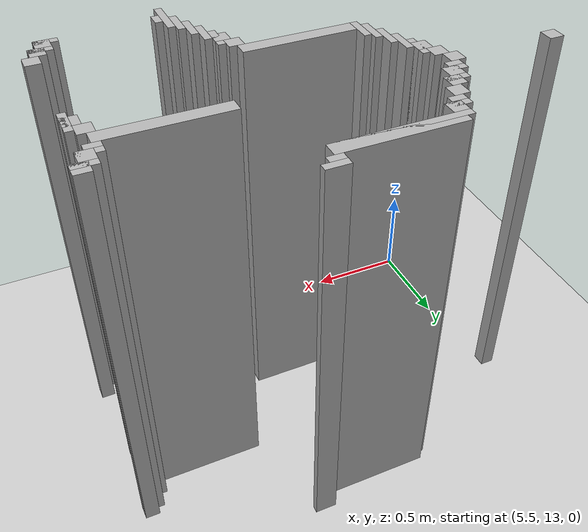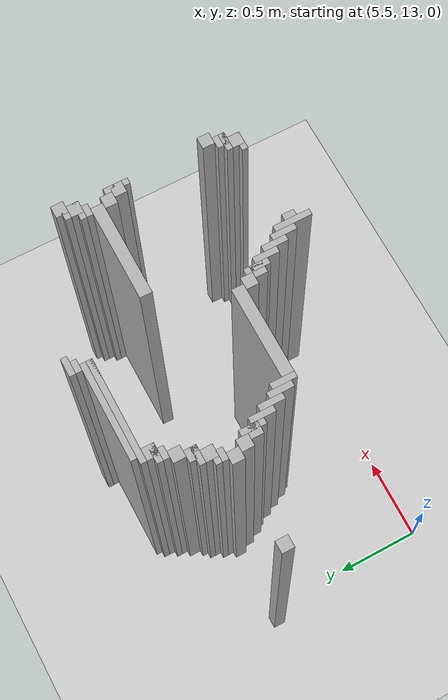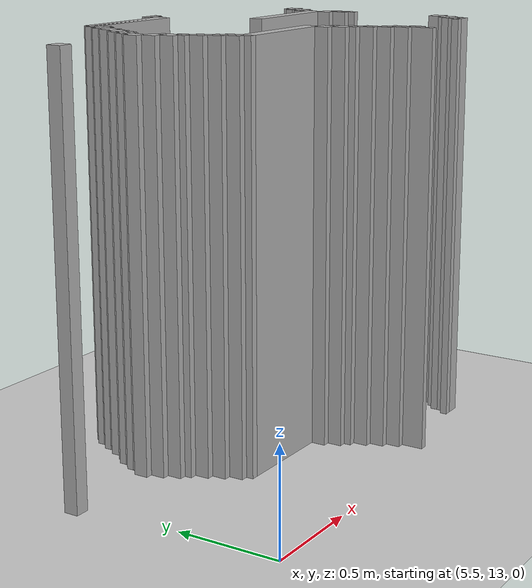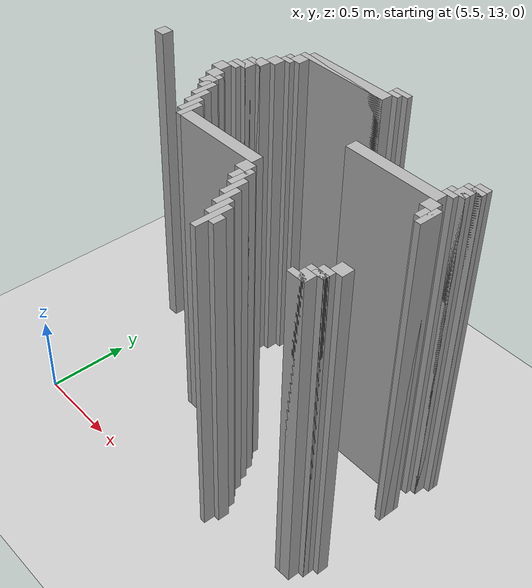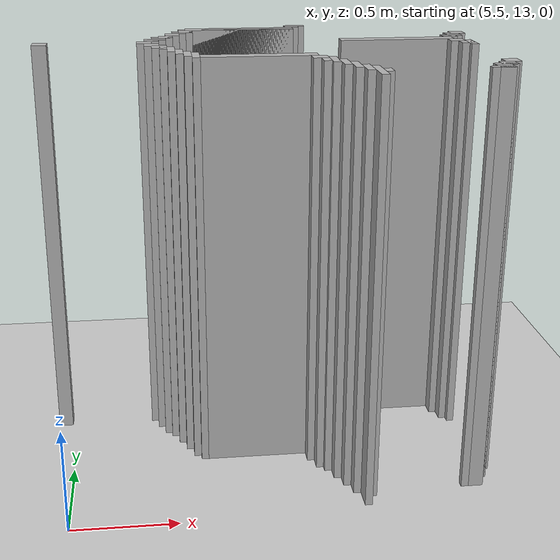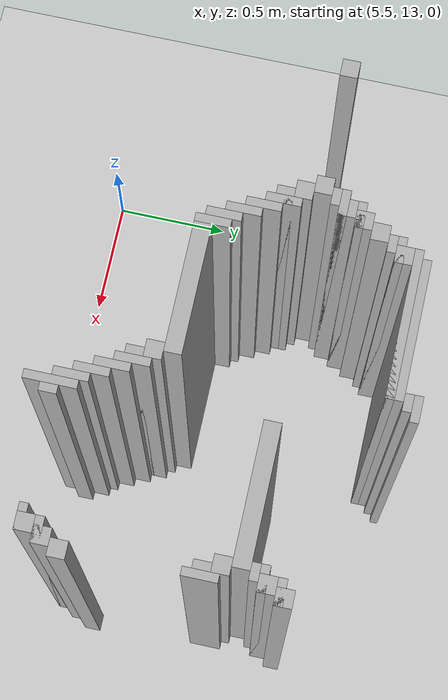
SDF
<sdf version="1.6">
 <world name="slam_world">
  <model name="ground_plane">
   <static>true</static>
   <link name="link">
    <collision name="collision">
     <geometry><plane><normal>0 0 1</normal><size>100 100</size></plane></geometry>
    </collision>
    <visual name="visual">
     <geometry><plane><normal>0 0 1</normal><size>100 100</size></plane></geometry>
     <material>
      <ambient>0.8 0.8 0.8 1</ambient>
      <diffuse>0.8 0.8 0.8 1</diffuse>
      <specular>0.8 0.8 0.8 1</specular>
     </material>
    </visual>
   </link>
  </model>
  <model name="wall_986">
   <static>true</static>
   <pose>6.69953596287703 14.4953596287703 1.0 0 0 0</pose>
   <link name="link">
    <collision name="collision">
     <geometry><box><size>0.10440835266821345 0.03480278422273782 2.0</size></box></geometry>
    </collision>
    <visual name="visual">
     <geometry><box><size>0.10440835266821345 0.03480278422273782 2.0</size></box></geometry>
     <material><ambient>0.5 0.5 0.5 1</ambient><diffuse>0.7 0.7 0.7 1</diffuse></material>
    </visual>
   </link>
  </model>
  <model name="wall_999">
   <static>true</static>
   <pose>6.682134570765661 14.460556844547563 1.0 0 0 0</pose>
   <link name="link">
    <collision name="collision">
     <geometry><box><size>0.06960556844547564 0.03480278422273782 2.0</size></box></geometry>
    </collision>
    <visual name="visual">
     <geometry><box><size>0.06960556844547564 0.03480278422273782 2.0</size></box></geometry>
     <material><ambient>0.5 0.5 0.5 1</ambient><diffuse>0.7 0.7 0.7 1</diffuse></material>
    </visual>
   </link>
  </model>
  <model name="wall_1008">
   <static>true</static>
   <pose>6.403712296983758 14.408352668213457 1.0 0 0 0</pose>
   <link name="link">
    <collision name="collision">
     <geometry><box><size>0.5568445475638051 0.06960556844547564 2.0</size></box></geometry>
    </collision>
    <visual name="visual">
     <geometry><box><size>0.5568445475638051 0.06960556844547564 2.0</size></box></geometry>
     <material><ambient>0.5 0.5 0.5 1</ambient><diffuse>0.7 0.7 0.7 1</diffuse></material>
    </visual>
   </link>
  </model>
  <model name="wall_1023">
   <static>true</static>
   <pose>6.386310904872389 14.390951276102088 1.0 0 0 0</pose>
   <link name="link">
    <collision name="collision">
     <geometry><box><size>0.5916473317865429 0.03480278422273782 2.0</size></box></geometry>
    </collision>
    <visual name="visual">
     <geometry><box><size>0.5916473317865429 0.03480278422273782 2.0</size></box></geometry>
     <material><ambient>0.5 0.5 0.5 1</ambient><diffuse>0.7 0.7 0.7 1</diffuse></material>
    </visual>
   </link>
  </model>
  <model name="wall_1035">
   <static>true</static>
   <pose>6.125290023201856 14.33874709976798 1.0 0 0 0</pose>
   <link name="link">
    <collision name="collision">
     <geometry><box><size>0.06960556844547564 0.06960556844547564 2.0</size></box></geometry>
    </collision>
    <visual name="visual">
     <geometry><box><size>0.06960556844547564 0.06960556844547564 2.0</size></box></geometry>
     <material><ambient>0.5 0.5 0.5 1</ambient><diffuse>0.7 0.7 0.7 1</diffuse></material>
    </visual>
   </link>
  </model>
  <model name="wall_1047">
   <static>true</static>
   <pose>6.107888631090487 14.321345707656612 1.0 0 0 0</pose>
   <link name="link">
    <collision name="collision">
     <geometry><box><size>0.10440835266821345 0.03480278422273782 2.0</size></box></geometry>
    </collision>
    <visual name="visual">
     <geometry><box><size>0.10440835266821345 0.03480278422273782 2.0</size></box></geometry>
     <material><ambient>0.5 0.5 0.5 1</ambient><diffuse>0.7 0.7 0.7 1</diffuse></material>
    </visual>
   </link>
  </model>
  <model name="wall_1058">
   <static>true</static>
   <pose>6.090487238979118 14.286542923433874 1.0 0 0 0</pose>
   <link name="link">
    <collision name="collision">
     <geometry><box><size>0.06960556844547564 0.03480278422273782 2.0</size></box></geometry>
    </collision>
    <visual name="visual">
     <geometry><box><size>0.06960556844547564 0.03480278422273782 2.0</size></box></geometry>
     <material><ambient>0.5 0.5 0.5 1</ambient><diffuse>0.7 0.7 0.7 1</diffuse></material>
    </visual>
   </link>
  </model>
  <model name="wall_1066">
   <static>true</static>
   <pose>6.05568445475638 14.234338747099768 1.0 0 0 0</pose>
   <link name="link">
    <collision name="collision">
     <geometry><box><size>0.06960556844547564 0.06960556844547564 2.0</size></box></geometry>
    </collision>
    <visual name="visual">
     <geometry><box><size>0.06960556844547564 0.06960556844547564 2.0</size></box></geometry>
     <material><ambient>0.5 0.5 0.5 1</ambient><diffuse>0.7 0.7 0.7 1</diffuse></material>
    </visual>
   </link>
  </model>
  <model name="wall_1078">
   <static>true</static>
   <pose>6.020881670533642 14.164733178654291 1.0 0 0 0</pose>
   <link name="link">
    <collision name="collision">
     <geometry><box><size>0.06960556844547564 0.06960556844547564 2.0</size></box></geometry>
    </collision>
    <visual name="visual">
     <geometry><box><size>0.06960556844547564 0.06960556844547564 2.0</size></box></geometry>
     <material><ambient>0.5 0.5 0.5 1</ambient><diffuse>0.7 0.7 0.7 1</diffuse></material>
    </visual>
   </link>
  </model>
  <model name="wall_1079">
   <static>true</static>
   <pose>7.48259860788863 14.164733178654291 1.0 0 0 0</pose>
   <link name="link">
    <collision name="collision">
     <geometry><box><size>0.06960556844547564 0.06960556844547564 2.0</size></box></geometry>
    </collision>
    <visual name="visual">
     <geometry><box><size>0.06960556844547564 0.06960556844547564 2.0</size></box></geometry>
     <material><ambient>0.5 0.5 0.5 1</ambient><diffuse>0.7 0.7 0.7 1</diffuse></material>
    </visual>
   </link>
  </model>
  <model name="wall_1090">
   <static>true</static>
   <pose>6.003480278422273 14.147331786542923 1.0 0 0 0</pose>
   <link name="link">
    <collision name="collision">
     <geometry><box><size>0.10440835266821345 0.03480278422273782 2.0</size></box></geometry>
    </collision>
    <visual name="visual">
     <geometry><box><size>0.10440835266821345 0.03480278422273782 2.0</size></box></geometry>
     <material><ambient>0.5 0.5 0.5 1</ambient><diffuse>0.7 0.7 0.7 1</diffuse></material>
    </visual>
   </link>
  </model>
  <model name="wall_1091">
   <static>true</static>
   <pose>7.465197215777262 14.147331786542923 1.0 0 0 0</pose>
   <link name="link">
    <collision name="collision">
     <geometry><box><size>0.10440835266821345 0.03480278422273782 2.0</size></box></geometry>
    </collision>
    <visual name="visual">
     <geometry><box><size>0.10440835266821345 0.03480278422273782 2.0</size></box></geometry>
     <material><ambient>0.5 0.5 0.5 1</ambient><diffuse>0.7 0.7 0.7 1</diffuse></material>
    </visual>
   </link>
  </model>
  <model name="wall_1101">
   <static>true</static>
   <pose>5.986078886310905 14.095127610208817 1.0 0 0 0</pose>
   <link name="link">
    <collision name="collision">
     <geometry><box><size>0.06960556844547564 0.06960556844547564 2.0</size></box></geometry>
    </collision>
    <visual name="visual">
     <geometry><box><size>0.06960556844547564 0.06960556844547564 2.0</size></box></geometry>
     <material><ambient>0.5 0.5 0.5 1</ambient><diffuse>0.7 0.7 0.7 1</diffuse></material>
    </visual>
   </link>
  </model>
  <model name="wall_1102">
   <static>true</static>
   <pose>7.447795823665893 14.095127610208817 1.0 0 0 0</pose>
   <link name="link">
    <collision name="collision">
     <geometry><box><size>0.06960556844547564 0.06960556844547564 2.0</size></box></geometry>
    </collision>
    <visual name="visual">
     <geometry><box><size>0.06960556844547564 0.06960556844547564 2.0</size></box></geometry>
     <material><ambient>0.5 0.5 0.5 1</ambient><diffuse>0.7 0.7 0.7 1</diffuse></material>
    </visual>
   </link>
  </model>
  <model name="wall_1109">
   <static>true</static>
   <pose>5.968677494199536 14.077726218097448 1.0 0 0 0</pose>
   <link name="link">
    <collision name="collision">
     <geometry><box><size>0.10440835266821345 0.03480278422273782 2.0</size></box></geometry>
    </collision>
    <visual name="visual">
     <geometry><box><size>0.10440835266821345 0.03480278422273782 2.0</size></box></geometry>
     <material><ambient>0.5 0.5 0.5 1</ambient><diffuse>0.7 0.7 0.7 1</diffuse></material>
    </visual>
   </link>
  </model>
  <model name="wall_1110">
   <static>true</static>
   <pose>7.430394431554524 14.077726218097448 1.0 0 0 0</pose>
   <link name="link">
    <collision name="collision">
     <geometry><box><size>0.10440835266821345 0.03480278422273782 2.0</size></box></geometry>
    </collision>
    <visual name="visual">
     <geometry><box><size>0.10440835266821345 0.03480278422273782 2.0</size></box></geometry>
     <material><ambient>0.5 0.5 0.5 1</ambient><diffuse>0.7 0.7 0.7 1</diffuse></material>
    </visual>
   </link>
  </model>
  <model name="wall_1120">
   <static>true</static>
   <pose>5.951276102088166 14.042923433874709 1.0 0 0 0</pose>
   <link name="link">
    <collision name="collision">
     <geometry><box><size>0.06960556844547564 0.03480278422273782 2.0</size></box></geometry>
    </collision>
    <visual name="visual">
     <geometry><box><size>0.06960556844547564 0.03480278422273782 2.0</size></box></geometry>
     <material><ambient>0.5 0.5 0.5 1</ambient><diffuse>0.7 0.7 0.7 1</diffuse></material>
    </visual>
   </link>
  </model>
  <model name="wall_1121">
   <static>true</static>
   <pose>7.412993039443156 14.042923433874709 1.0 0 0 0</pose>
   <link name="link">
    <collision name="collision">
     <geometry><box><size>0.06960556844547564 0.03480278422273782 2.0</size></box></geometry>
    </collision>
    <visual name="visual">
     <geometry><box><size>0.06960556844547564 0.03480278422273782 2.0</size></box></geometry>
     <material><ambient>0.5 0.5 0.5 1</ambient><diffuse>0.7 0.7 0.7 1</diffuse></material>
    </visual>
   </link>
  </model>
  <model name="wall_1129">
   <static>true</static>
   <pose>5.4292343387471 13.990719257540603 1.0 0 0 0</pose>
   <link name="link">
    <collision name="collision">
     <geometry><box><size>0.06960556844547564 0.06960556844547564 2.0</size></box></geometry>
    </collision>
    <visual name="visual">
     <geometry><box><size>0.06960556844547564 0.06960556844547564 2.0</size></box></geometry>
     <material><ambient>0.5 0.5 0.5 1</ambient><diffuse>0.7 0.7 0.7 1</diffuse></material>
    </visual>
   </link>
  </model>
  <model name="wall_1130">
   <static>true</static>
   <pose>5.916473317865429 13.990719257540603 1.0 0 0 0</pose>
   <link name="link">
    <collision name="collision">
     <geometry><box><size>0.06960556844547564 0.06960556844547564 2.0</size></box></geometry>
    </collision>
    <visual name="visual">
     <geometry><box><size>0.06960556844547564 0.06960556844547564 2.0</size></box></geometry>
     <material><ambient>0.5 0.5 0.5 1</ambient><diffuse>0.7 0.7 0.7 1</diffuse></material>
    </visual>
   </link>
  </model>
  <model name="wall_1131">
   <static>true</static>
   <pose>7.134570765661253 13.990719257540603 1.0 0 0 0</pose>
   <link name="link">
    <collision name="collision">
     <geometry><box><size>0.5568445475638051 0.06960556844547564 2.0</size></box></geometry>
    </collision>
    <visual name="visual">
     <geometry><box><size>0.5568445475638051 0.06960556844547564 2.0</size></box></geometry>
     <material><ambient>0.5 0.5 0.5 1</ambient><diffuse>0.7 0.7 0.7 1</diffuse></material>
    </visual>
   </link>
  </model>
  <model name="wall_1145">
   <static>true</static>
   <pose>5.951276102088166 13.921113689095128 1.0 0 0 0</pose>
   <link name="link">
    <collision name="collision">
     <geometry><box><size>0.06960556844547564 0.06960556844547564 2.0</size></box></geometry>
    </collision>
    <visual name="visual">
     <geometry><box><size>0.06960556844547564 0.06960556844547564 2.0</size></box></geometry>
     <material><ambient>0.5 0.5 0.5 1</ambient><diffuse>0.7 0.7 0.7 1</diffuse></material>
    </visual>
   </link>
  </model>
  <model name="wall_1146">
   <static>true</static>
   <pose>7.412993039443156 13.921113689095128 1.0 0 0 0</pose>
   <link name="link">
    <collision name="collision">
     <geometry><box><size>0.06960556844547564 0.06960556844547564 2.0</size></box></geometry>
    </collision>
    <visual name="visual">
     <geometry><box><size>0.06960556844547564 0.06960556844547564 2.0</size></box></geometry>
     <material><ambient>0.5 0.5 0.5 1</ambient><diffuse>0.7 0.7 0.7 1</diffuse></material>
    </visual>
   </link>
  </model>
  <model name="wall_1162">
   <static>true</static>
   <pose>6.003480278422273 13.851508120649651 1.0 0 0 0</pose>
   <link name="link">
    <collision name="collision">
     <geometry><box><size>0.03480278422273782 0.13921113689095127 2.0</size></box></geometry>
    </collision>
    <visual name="visual">
     <geometry><box><size>0.03480278422273782 0.13921113689095127 2.0</size></box></geometry>
     <material><ambient>0.5 0.5 0.5 1</ambient><diffuse>0.7 0.7 0.7 1</diffuse></material>
    </visual>
   </link>
  </model>
  <model name="wall_1163">
   <static>true</static>
   <pose>7.465197215777262 13.851508120649651 1.0 0 0 0</pose>
   <link name="link">
    <collision name="collision">
     <geometry><box><size>0.03480278422273782 0.13921113689095127 2.0</size></box></geometry>
    </collision>
    <visual name="visual">
     <geometry><box><size>0.03480278422273782 0.13921113689095127 2.0</size></box></geometry>
     <material><ambient>0.5 0.5 0.5 1</ambient><diffuse>0.7 0.7 0.7 1</diffuse></material>
    </visual>
   </link>
  </model>
  <model name="wall_1179">
   <static>true</static>
   <pose>5.986078886310905 13.851508120649651 1.0 0 0 0</pose>
   <link name="link">
    <collision name="collision">
     <geometry><box><size>0.06960556844547564 0.06960556844547564 2.0</size></box></geometry>
    </collision>
    <visual name="visual">
     <geometry><box><size>0.06960556844547564 0.06960556844547564 2.0</size></box></geometry>
     <material><ambient>0.5 0.5 0.5 1</ambient><diffuse>0.7 0.7 0.7 1</diffuse></material>
    </visual>
   </link>
  </model>
  <model name="wall_1180">
   <static>true</static>
   <pose>7.447795823665893 13.851508120649651 1.0 0 0 0</pose>
   <link name="link">
    <collision name="collision">
     <geometry><box><size>0.06960556844547564 0.06960556844547564 2.0</size></box></geometry>
    </collision>
    <visual name="visual">
     <geometry><box><size>0.06960556844547564 0.06960556844547564 2.0</size></box></geometry>
     <material><ambient>0.5 0.5 0.5 1</ambient><diffuse>0.7 0.7 0.7 1</diffuse></material>
    </visual>
   </link>
  </model>
  <model name="wall_1196">
   <static>true</static>
   <pose>6.038283062645012 13.781902552204176 1.0 0 0 0</pose>
   <link name="link">
    <collision name="collision">
     <geometry><box><size>0.03480278422273782 0.13921113689095127 2.0</size></box></geometry>
    </collision>
    <visual name="visual">
     <geometry><box><size>0.03480278422273782 0.13921113689095127 2.0</size></box></geometry>
     <material><ambient>0.5 0.5 0.5 1</ambient><diffuse>0.7 0.7 0.7 1</diffuse></material>
    </visual>
   </link>
  </model>
  <model name="wall_1219">
   <static>true</static>
   <pose>6.073085846867749 13.7122969837587 1.0 0 0 0</pose>
   <link name="link">
    <collision name="collision">
     <geometry><box><size>0.03480278422273782 0.13921113689095127 2.0</size></box></geometry>
    </collision>
    <visual name="visual">
     <geometry><box><size>0.03480278422273782 0.13921113689095127 2.0</size></box></geometry>
     <material><ambient>0.5 0.5 0.5 1</ambient><diffuse>0.7 0.7 0.7 1</diffuse></material>
    </visual>
   </link>
  </model>
  <model name="wall_1236">
   <static>true</static>
   <pose>6.107888631090487 13.642691415313225 1.0 0 0 0</pose>
   <link name="link">
    <collision name="collision">
     <geometry><box><size>0.03480278422273782 0.13921113689095127 2.0</size></box></geometry>
    </collision>
    <visual name="visual">
     <geometry><box><size>0.03480278422273782 0.13921113689095127 2.0</size></box></geometry>
     <material><ambient>0.5 0.5 0.5 1</ambient><diffuse>0.7 0.7 0.7 1</diffuse></material>
    </visual>
   </link>
  </model>
  <model name="wall_1253">
   <static>true</static>
   <pose>6.142691415313225 13.607888631090487 1.0 0 0 0</pose>
   <link name="link">
    <collision name="collision">
     <geometry><box><size>0.03480278422273782 0.13921113689095127 2.0</size></box></geometry>
    </collision>
    <visual name="visual">
     <geometry><box><size>0.03480278422273782 0.13921113689095127 2.0</size></box></geometry>
     <material><ambient>0.5 0.5 0.5 1</ambient><diffuse>0.7 0.7 0.7 1</diffuse></material>
    </visual>
   </link>
  </model>
  <model name="wall_1275">
   <static>true</static>
   <pose>6.421113689095128 13.573085846867748 1.0 0 0 0</pose>
   <link name="link">
    <collision name="collision">
     <geometry><box><size>0.5220417633410672 0.06960556844547564 2.0</size></box></geometry>
    </collision>
    <visual name="visual">
     <geometry><box><size>0.5220417633410672 0.06960556844547564 2.0</size></box></geometry>
     <material><ambient>0.5 0.5 0.5 1</ambient><diffuse>0.7 0.7 0.7 1</diffuse></material>
    </visual>
   </link>
  </model>
  <model name="wall_1297">
   <static>true</static>
   <pose>6.682134570765661 13.503480278422273 1.0 0 0 0</pose>
   <link name="link">
    <collision name="collision">
     <geometry><box><size>0.06960556844547564 0.06960556844547564 2.0</size></box></geometry>
    </collision>
    <visual name="visual">
     <geometry><box><size>0.06960556844547564 0.06960556844547564 2.0</size></box></geometry>
     <material><ambient>0.5 0.5 0.5 1</ambient><diffuse>0.7 0.7 0.7 1</diffuse></material>
    </visual>
   </link>
  </model>
  <model name="wall_1311">
   <static>true</static>
   <pose>6.734338747099768 13.433874709976797 1.0 0 0 0</pose>
   <link name="link">
    <collision name="collision">
     <geometry><box><size>0.03480278422273782 0.13921113689095127 2.0</size></box></geometry>
    </collision>
    <visual name="visual">
     <geometry><box><size>0.03480278422273782 0.13921113689095127 2.0</size></box></geometry>
     <material><ambient>0.5 0.5 0.5 1</ambient><diffuse>0.7 0.7 0.7 1</diffuse></material>
    </visual>
   </link>
  </model>
  <model name="wall_1325">
   <static>true</static>
   <pose>6.716937354988398 13.433874709976797 1.0 0 0 0</pose>
   <link name="link">
    <collision name="collision">
     <geometry><box><size>0.06960556844547564 0.06960556844547564 2.0</size></box></geometry>
    </collision>
    <visual name="visual">
     <geometry><box><size>0.06960556844547564 0.06960556844547564 2.0</size></box></geometry>
     <material><ambient>0.5 0.5 0.5 1</ambient><diffuse>0.7 0.7 0.7 1</diffuse></material>
    </visual>
   </link>
  </model>
  <model name="wall_1339">
   <static>true</static>
   <pose>6.769141531322505 13.364269141531322 1.0 0 0 0</pose>
   <link name="link">
    <collision name="collision">
     <geometry><box><size>0.03480278422273782 0.13921113689095127 2.0</size></box></geometry>
    </collision>
    <visual name="visual">
     <geometry><box><size>0.03480278422273782 0.13921113689095127 2.0</size></box></geometry>
     <material><ambient>0.5 0.5 0.5 1</ambient><diffuse>0.7 0.7 0.7 1</diffuse></material>
    </visual>
   </link>
  </model>
  <model name="wall_1360">
   <static>true</static>
   <pose>6.803944315545244 13.294663573085847 1.0 0 0 0</pose>
   <link name="link">
    <collision name="collision">
     <geometry><box><size>0.03480278422273782 0.13921113689095127 2.0</size></box></geometry>
    </collision>
    <visual name="visual">
     <geometry><box><size>0.03480278422273782 0.13921113689095127 2.0</size></box></geometry>
     <material><ambient>0.5 0.5 0.5 1</ambient><diffuse>0.7 0.7 0.7 1</diffuse></material>
    </visual>
   </link>
  </model>
  <model name="wall_1361">
   <static>true</static>
   <pose>7.48259860788863 13.329466357308585 1.0 0 0 0</pose>
   <link name="link">
    <collision name="collision">
     <geometry><box><size>0.06960556844547564 0.06960556844547564 2.0</size></box></geometry>
    </collision>
    <visual name="visual">
     <geometry><box><size>0.06960556844547564 0.06960556844547564 2.0</size></box></geometry>
     <material><ambient>0.5 0.5 0.5 1</ambient><diffuse>0.7 0.7 0.7 1</diffuse></material>
    </visual>
   </link>
  </model>
  <model name="wall_1374">
   <static>true</static>
   <pose>6.838747099767981 13.22505800464037 1.0 0 0 0</pose>
   <link name="link">
    <collision name="collision">
     <geometry><box><size>0.03480278422273782 0.13921113689095127 2.0</size></box></geometry>
    </collision>
    <visual name="visual">
     <geometry><box><size>0.03480278422273782 0.13921113689095127 2.0</size></box></geometry>
     <material><ambient>0.5 0.5 0.5 1</ambient><diffuse>0.7 0.7 0.7 1</diffuse></material>
    </visual>
   </link>
  </model>
  <model name="wall_1375">
   <static>true</static>
   <pose>7.447795823665893 13.259860788863108 1.0 0 0 0</pose>
   <link name="link">
    <collision name="collision">
     <geometry><box><size>0.06960556844547564 0.06960556844547564 2.0</size></box></geometry>
    </collision>
    <visual name="visual">
     <geometry><box><size>0.06960556844547564 0.06960556844547564 2.0</size></box></geometry>
     <material><ambient>0.5 0.5 0.5 1</ambient><diffuse>0.7 0.7 0.7 1</diffuse></material>
    </visual>
   </link>
  </model>
  <model name="wall_1388">
   <static>true</static>
   <pose>6.8735498839907185 13.155452436194896 1.0 0 0 0</pose>
   <link name="link">
    <collision name="collision">
     <geometry><box><size>0.03480278422273782 0.2088167053364269 2.0</size></box></geometry>
    </collision>
    <visual name="visual">
     <geometry><box><size>0.03480278422273782 0.2088167053364269 2.0</size></box></geometry>
     <material><ambient>0.5 0.5 0.5 1</ambient><diffuse>0.7 0.7 0.7 1</diffuse></material>
    </visual>
   </link>
  </model>
  <model name="wall_1389">
   <static>true</static>
   <pose>7.430394431554524 13.24245939675174 1.0 0 0 0</pose>
   <link name="link">
    <collision name="collision">
     <geometry><box><size>0.10440835266821345 0.03480278422273782 2.0</size></box></geometry>
    </collision>
    <visual name="visual">
     <geometry><box><size>0.10440835266821345 0.03480278422273782 2.0</size></box></geometry>
     <material><ambient>0.5 0.5 0.5 1</ambient><diffuse>0.7 0.7 0.7 1</diffuse></material>
    </visual>
   </link>
  </model>
  <model name="wall_1398">
   <static>true</static>
   <pose>7.412993039443156 13.190255220417633 1.0 0 0 0</pose>
   <link name="link">
    <collision name="collision">
     <geometry><box><size>0.06960556844547564 0.06960556844547564 2.0</size></box></geometry>
    </collision>
    <visual name="visual">
     <geometry><box><size>0.06960556844547564 0.06960556844547564 2.0</size></box></geometry>
     <material><ambient>0.5 0.5 0.5 1</ambient><diffuse>0.7 0.7 0.7 1</diffuse></material>
    </visual>
   </link>
  </model>
  <model name="wall_1409">
   <static>true</static>
   <pose>6.908352668213457 13.155452436194896 1.0 0 0 0</pose>
   <link name="link">
    <collision name="collision">
     <geometry><box><size>0.03480278422273782 0.06960556844547564 2.0</size></box></geometry>
    </collision>
    <visual name="visual">
     <geometry><box><size>0.03480278422273782 0.06960556844547564 2.0</size></box></geometry>
     <material><ambient>0.5 0.5 0.5 1</ambient><diffuse>0.7 0.7 0.7 1</diffuse></material>
    </visual>
   </link>
  </model>
  <model name="wall_1410">
   <static>true</static>
   <pose>7.395591647331786 13.172853828306264 1.0 0 0 0</pose>
   <link name="link">
    <collision name="collision">
     <geometry><box><size>0.10440835266821345 0.03480278422273782 2.0</size></box></geometry>
    </collision>
    <visual name="visual">
     <geometry><box><size>0.10440835266821345 0.03480278422273782 2.0</size></box></geometry>
     <material><ambient>0.5 0.5 0.5 1</ambient><diffuse>0.7 0.7 0.7 1</diffuse></material>
    </visual>
   </link>
  </model>
 </world>
</sdf>
